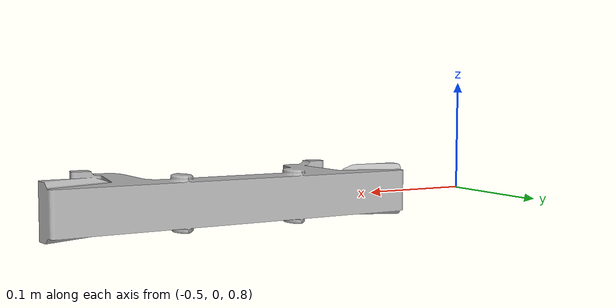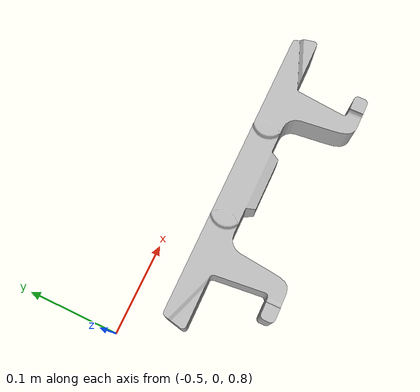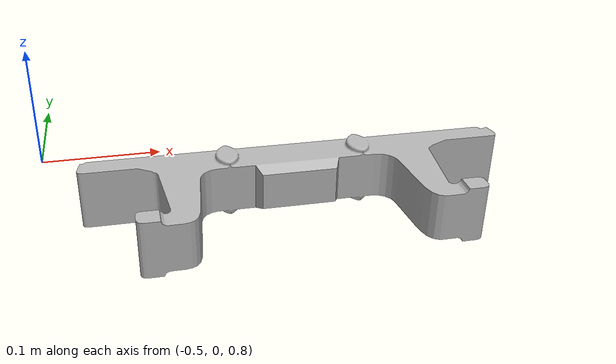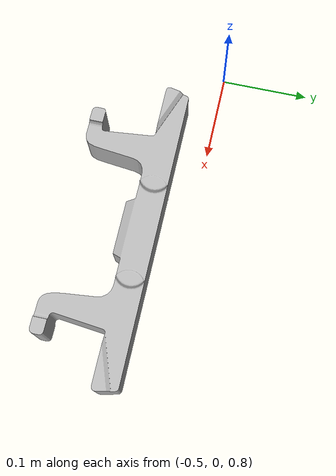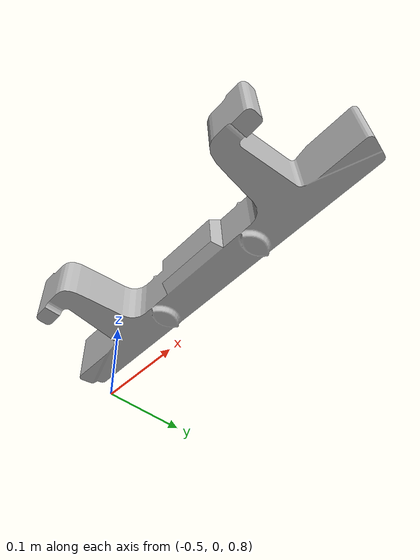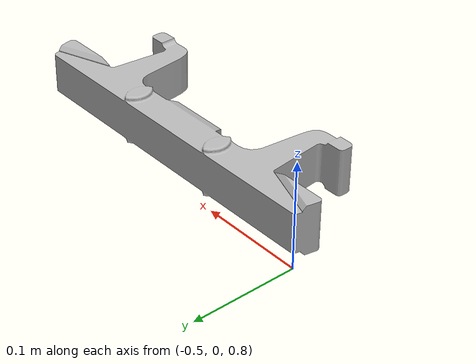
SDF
<?xml version="1.0" ?>
<sdf version="1.5">
 <model name='grelha'>
   <pose >0 0 0 0 0 0</pose>
    <link name="link">
        <inertial>
          <mass>5</mass>
          <inertia>
            <ixx>0.01</ixx>
            <iyy>0.06</iyy>s
            <izz>0.07</izz>
            <ixy>0</ixy>
            <ixz>0</ixz>
            <iyz>0</iyz>
          </inertia>
        </inertial>
        <collision name='collision'>
          <geometry>
            <mesh>
              <uri>model://grelha/meshes/grelha.stl</uri>
            </mesh>
          </geometry>
        </collision>
        <visual name='visual'>
          <geometry>
             <mesh>
               <uri>model://grelha/meshes/grelha.stl</uri>
            </mesh>
          </geometry>
        </visual>
      </link>
    </model>
</sdf>
